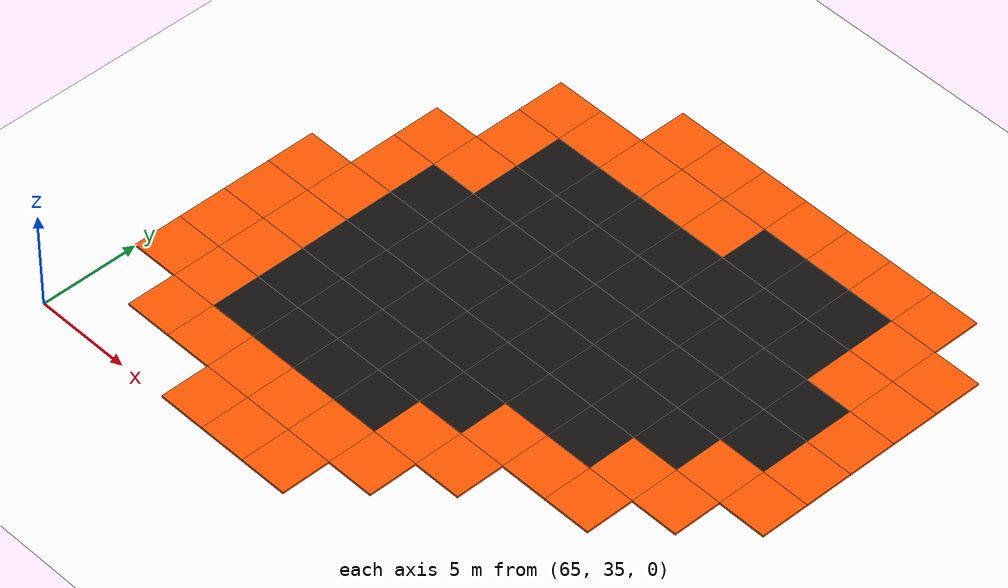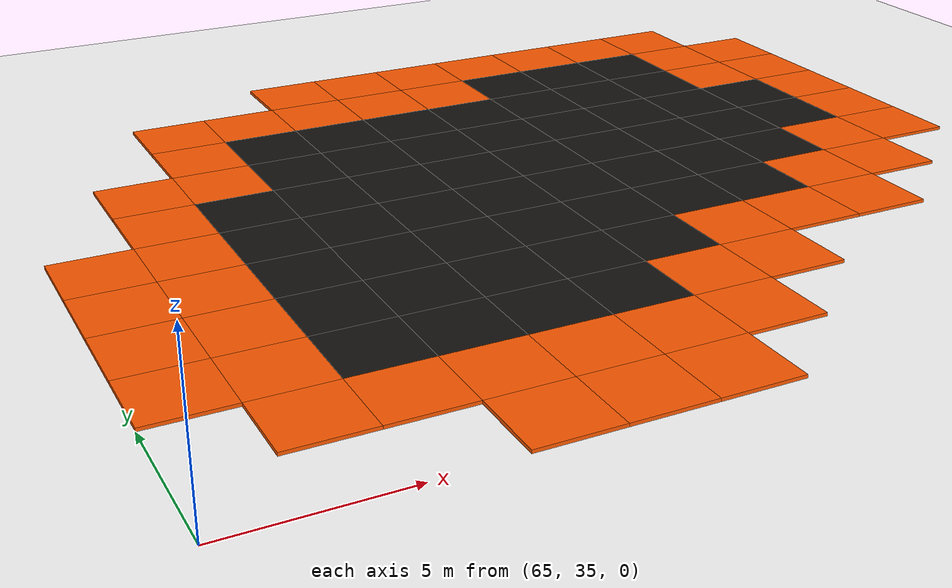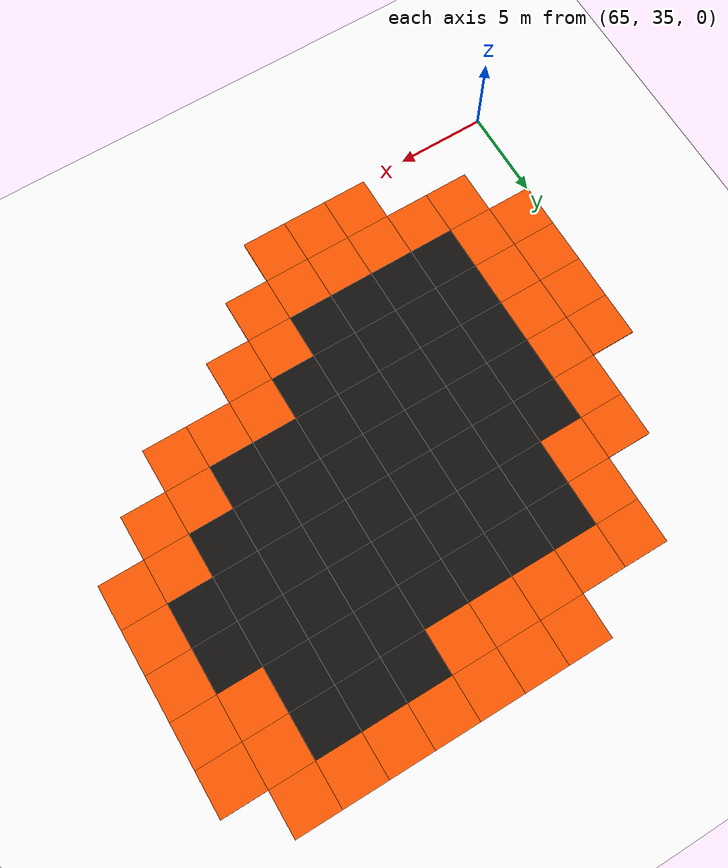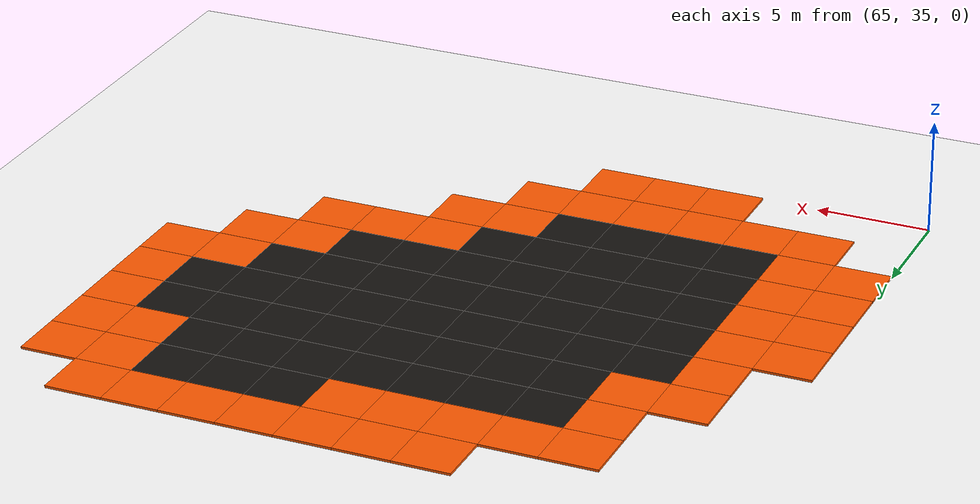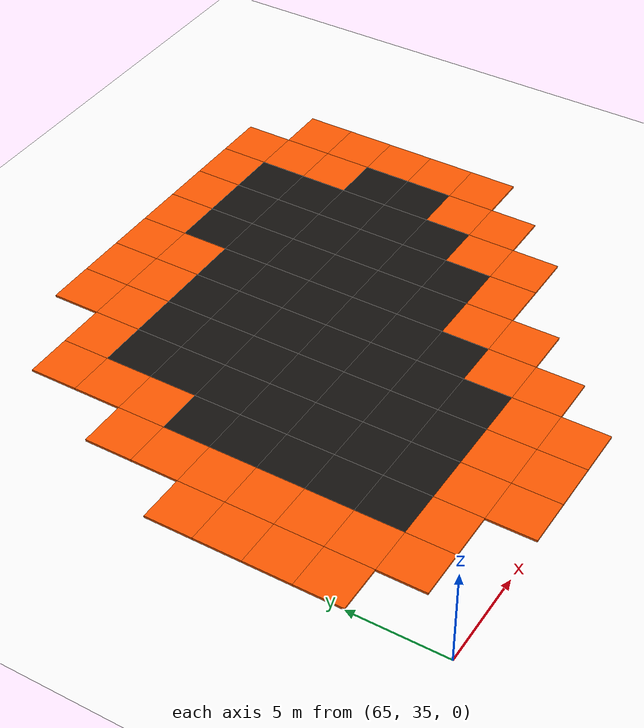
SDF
<?xml version="1.0" encoding="UTF-8"?>
<sdf version="1.9">
  <world name="fire">
    <physics type="ode">
      <max_step_size>0.004</max_step_size>
      <real_time_factor>1.0</real_time_factor>
      <real_time_update_rate>250</real_time_update_rate>
    </physics>
    <gravity>0 0 -9.8</gravity>
    <magnetic_field>6e-06 2.3e-05 -4.2e-05</magnetic_field>
    <atmosphere type="adiabatic"/>
    <scene>
      <grid>false</grid>
      <ambient>0.4 0.4 0.4 1</ambient>
      <background>0.7 0.7 0.7 1</background>
      <shadows>true</shadows>
    </scene>
    <model name="ground_plane">
      <static>true</static>
      <link name="link">
        <collision name="collision">
          <geometry>
            <plane>
              <normal>0 0 1</normal>
              <size>1 1</size>
            </plane>
          </geometry>
          <surface>
            <friction>
              <ode/>
            </friction>
            <bounce/>
            <contact/>
          </surface>
        </collision>
        <visual name="visual">
          <geometry>
            <plane>
              <normal>0 0 1</normal>
              <size>400 400</size>
            </plane>
          </geometry>
          <material>
            <ambient>1 1 1 1</ambient>
            <diffuse>1 1 1 1</diffuse>
            <specular>0 0 0 1</specular>
            <pbr>
              <metal>
                <albedo_map>model://grass_ground/materials/textures/grass.png</albedo_map>
                <metalness>0</metalness>
                <roughness>1</roughness>
              </metal>
            </pbr>
          </material>
        </visual>
        <pose>0 0 0 0 -0 0</pose>
        <inertial>
          <pose>0 0 0 0 -0 0</pose>
          <mass>1</mass>
          <inertia>
            <ixx>1</ixx>
            <ixy>0</ixy>
            <ixz>0</ixz>
            <iyy>1</iyy>
            <iyz>0</iyz>
            <izz>1</izz>
          </inertia>
        </inertial>
        <enable_wind>false</enable_wind>
      </link>
      <pose>0 0 0 0 -0 0</pose>
      <self_collide>false</self_collide>
    </model>
    <light name="sunUTC" type="directional">
      <pose>0 0 500 0 -0 0</pose>
      <cast_shadows>true</cast_shadows>
      <intensity>1</intensity>
      <direction>0.001 0.625 -0.78</direction>
      <diffuse>0.904 0.904 0.904 1</diffuse>
      <specular>0.271 0.271 0.271 1</specular>
      <attenuation>
        <range>2000</range>
        <linear>0</linear>
        <constant>1</constant>
        <quadratic>0</quadratic>
      </attenuation>
      <spot>
        <inner_angle>0</inner_angle>
        <outer_angle>0</outer_angle>
        <falloff>0</falloff>
      </spot>
    </light>

    <atmosphere type="adiabatic">
      <temperature>298.15</temperature>
    </atmosphere>
    <model name="fire_cell_000">
      <static>true</static>
      <pose>66.25 41.25 0.05 0 0 0</pose>
      <link name="link">
        <visual name="visual">
          <geometry><box><size>2.5 2.5 0.1</size></box></geometry>
          <material><ambient>1.0 0.35 0.0 1</ambient><diffuse>1.0 0.35 0.0 1</diffuse><emissive>0.9 0.25 0.0 1</emissive></material>
          <plugin filename="gz-sim-thermal-system" name="gz::sim::systems::Thermal">
            <temperature>663.6</temperature>
          </plugin>
        </visual>
      </link>
    </model>
    <model name="fire_cell_001">
      <static>true</static>
      <pose>66.25 43.75 0.05 0 0 0</pose>
      <link name="link">
        <visual name="visual">
          <geometry><box><size>2.5 2.5 0.1</size></box></geometry>
          <material><ambient>1.0 0.35 0.0 1</ambient><diffuse>1.0 0.35 0.0 1</diffuse><emissive>0.9 0.25 0.0 1</emissive></material>
          <plugin filename="gz-sim-thermal-system" name="gz::sim::systems::Thermal">
            <temperature>726.2</temperature>
          </plugin>
        </visual>
      </link>
    </model>
    <model name="fire_cell_002">
      <static>true</static>
      <pose>66.25 46.25 0.05 0 0 0</pose>
      <link name="link">
        <visual name="visual">
          <geometry><box><size>2.5 2.5 0.1</size></box></geometry>
          <material><ambient>1.0 0.35 0.0 1</ambient><diffuse>1.0 0.35 0.0 1</diffuse><emissive>0.9 0.25 0.0 1</emissive></material>
          <plugin filename="gz-sim-thermal-system" name="gz::sim::systems::Thermal">
            <temperature>725.2</temperature>
          </plugin>
        </visual>
      </link>
    </model>
    <model name="fire_cell_003">
      <static>true</static>
      <pose>66.25 48.75 0.05 0 0 0</pose>
      <link name="link">
        <visual name="visual">
          <geometry><box><size>2.5 2.5 0.1</size></box></geometry>
          <material><ambient>1.0 0.35 0.0 1</ambient><diffuse>1.0 0.35 0.0 1</diffuse><emissive>0.9 0.25 0.0 1</emissive></material>
          <plugin filename="gz-sim-thermal-system" name="gz::sim::systems::Thermal">
            <temperature>658.7</temperature>
          </plugin>
        </visual>
      </link>
    </model>
    <model name="fire_cell_004">
      <static>true</static>
      <pose>68.75 38.75 0.05 0 0 0</pose>
      <link name="link">
        <visual name="visual">
          <geometry><box><size>2.5 2.5 0.1</size></box></geometry>
          <material><ambient>1.0 0.35 0.0 1</ambient><diffuse>1.0 0.35 0.0 1</diffuse><emissive>0.9 0.25 0.0 1</emissive></material>
          <plugin filename="gz-sim-thermal-system" name="gz::sim::systems::Thermal">
            <temperature>687.7</temperature>
          </plugin>
        </visual>
      </link>
    </model>
    <model name="fire_cell_005">
      <static>true</static>
      <pose>68.75 41.25 0.05 0 0 0</pose>
      <link name="link">
        <visual name="visual">
          <geometry><box><size>2.5 2.5 0.1</size></box></geometry>
          <material><ambient>1.0 0.35 0.0 1</ambient><diffuse>1.0 0.35 0.0 1</diffuse><emissive>0.9 0.25 0.0 1</emissive></material>
          <plugin filename="gz-sim-thermal-system" name="gz::sim::systems::Thermal">
            <temperature>709.3</temperature>
          </plugin>
        </visual>
      </link>
    </model>
    <model name="fire_cell_006">
      <static>true</static>
      <pose>68.75 43.75 0.05 0 0 0</pose>
      <link name="link">
        <visual name="visual">
          <geometry><box><size>2.5 2.5 0.1</size></box></geometry>
          <material><ambient>1.0 0.35 0.0 1</ambient><diffuse>1.0 0.35 0.0 1</diffuse><emissive>0.9 0.25 0.0 1</emissive></material>
          <plugin filename="gz-sim-thermal-system" name="gz::sim::systems::Thermal">
            <temperature>715.3</temperature>
          </plugin>
        </visual>
      </link>
    </model>
    <model name="fire_cell_007">
      <static>true</static>
      <pose>68.75 46.25 0.05 0 0 0</pose>
      <link name="link">
        <visual name="visual">
          <geometry><box><size>2.5 2.5 0.1</size></box></geometry>
          <material><ambient>1.0 0.35 0.0 1</ambient><diffuse>1.0 0.35 0.0 1</diffuse><emissive>0.9 0.25 0.0 1</emissive></material>
          <plugin filename="gz-sim-thermal-system" name="gz::sim::systems::Thermal">
            <temperature>744.8</temperature>
          </plugin>
        </visual>
      </link>
    </model>
    <model name="fire_cell_008">
      <static>true</static>
      <pose>68.75 48.75 0.05 0 0 0</pose>
      <link name="link">
        <visual name="visual">
          <geometry><box><size>2.5 2.5 0.1</size></box></geometry>
          <material><ambient>1.0 0.35 0.0 1</ambient><diffuse>1.0 0.35 0.0 1</diffuse><emissive>0.9 0.25 0.0 1</emissive></material>
          <plugin filename="gz-sim-thermal-system" name="gz::sim::systems::Thermal">
            <temperature>698.6</temperature>
          </plugin>
        </visual>
      </link>
    </model>
    <model name="fire_cell_009">
      <static>true</static>
      <pose>68.75 51.25 0.05 0 0 0</pose>
      <link name="link">
        <visual name="visual">
          <geometry><box><size>2.5 2.5 0.1</size></box></geometry>
          <material><ambient>1.0 0.35 0.0 1</ambient><diffuse>1.0 0.35 0.0 1</diffuse><emissive>0.9 0.25 0.0 1</emissive></material>
          <plugin filename="gz-sim-thermal-system" name="gz::sim::systems::Thermal">
            <temperature>712.0</temperature>
          </plugin>
        </visual>
      </link>
    </model>
    <model name="fire_cell_010">
      <static>true</static>
      <pose>68.75 53.75 0.05 0 0 0</pose>
      <link name="link">
        <visual name="visual">
          <geometry><box><size>2.5 2.5 0.1</size></box></geometry>
          <material><ambient>1.0 0.35 0.0 1</ambient><diffuse>1.0 0.35 0.0 1</diffuse><emissive>0.9 0.25 0.0 1</emissive></material>
          <plugin filename="gz-sim-thermal-system" name="gz::sim::systems::Thermal">
            <temperature>723.2</temperature>
          </plugin>
        </visual>
      </link>
    </model>
    <model name="fire_cell_011">
      <static>true</static>
      <pose>71.25 38.75 0.05 0 0 0</pose>
      <link name="link">
        <visual name="visual">
          <geometry><box><size>2.5 2.5 0.1</size></box></geometry>
          <material><ambient>1.0 0.35 0.0 1</ambient><diffuse>1.0 0.35 0.0 1</diffuse><emissive>0.9 0.25 0.0 1</emissive></material>
          <plugin filename="gz-sim-thermal-system" name="gz::sim::systems::Thermal">
            <temperature>710.6</temperature>
          </plugin>
        </visual>
      </link>
    </model>
    <model name="fire_cell_012">
      <static>true</static>
      <pose>71.25 41.25 0.05 0 0 0</pose>
      <link name="link">
        <visual name="visual">
          <geometry><box><size>2.5 2.5 0.1</size></box></geometry>
          <material><ambient>0.08 0.07 0.06 1</ambient><diffuse>0.08 0.07 0.06 1</diffuse><emissive>0 0 0 1</emissive></material>
          <plugin filename="gz-sim-thermal-system" name="gz::sim::systems::Thermal">
            <temperature>361.9</temperature>
          </plugin>
        </visual>
      </link>
    </model>
    <model name="fire_cell_013">
      <static>true</static>
      <pose>71.25 43.75 0.05 0 0 0</pose>
      <link name="link">
        <visual name="visual">
          <geometry><box><size>2.5 2.5 0.1</size></box></geometry>
          <material><ambient>0.08 0.07 0.06 1</ambient><diffuse>0.08 0.07 0.06 1</diffuse><emissive>0 0 0 1</emissive></material>
          <plugin filename="gz-sim-thermal-system" name="gz::sim::systems::Thermal">
            <temperature>397.6</temperature>
          </plugin>
        </visual>
      </link>
    </model>
    <model name="fire_cell_014">
      <static>true</static>
      <pose>71.25 46.25 0.05 0 0 0</pose>
      <link name="link">
        <visual name="visual">
          <geometry><box><size>2.5 2.5 0.1</size></box></geometry>
          <material><ambient>0.08 0.07 0.06 1</ambient><diffuse>0.08 0.07 0.06 1</diffuse><emissive>0 0 0 1</emissive></material>
          <plugin filename="gz-sim-thermal-system" name="gz::sim::systems::Thermal">
            <temperature>382.7</temperature>
          </plugin>
        </visual>
      </link>
    </model>
    <model name="fire_cell_015">
      <static>true</static>
      <pose>71.25 48.75 0.05 0 0 0</pose>
      <link name="link">
        <visual name="visual">
          <geometry><box><size>2.5 2.5 0.1</size></box></geometry>
          <material><ambient>0.08 0.07 0.06 1</ambient><diffuse>0.08 0.07 0.06 1</diffuse><emissive>0 0 0 1</emissive></material>
          <plugin filename="gz-sim-thermal-system" name="gz::sim::systems::Thermal">
            <temperature>386.2</temperature>
          </plugin>
        </visual>
      </link>
    </model>
    <model name="fire_cell_016">
      <static>true</static>
      <pose>71.25 51.25 0.05 0 0 0</pose>
      <link name="link">
        <visual name="visual">
          <geometry><box><size>2.5 2.5 0.1</size></box></geometry>
          <material><ambient>0.08 0.07 0.06 1</ambient><diffuse>0.08 0.07 0.06 1</diffuse><emissive>0 0 0 1</emissive></material>
          <plugin filename="gz-sim-thermal-system" name="gz::sim::systems::Thermal">
            <temperature>341.1</temperature>
          </plugin>
        </visual>
      </link>
    </model>
    <model name="fire_cell_017">
      <static>true</static>
      <pose>71.25 53.75 0.05 0 0 0</pose>
      <link name="link">
        <visual name="visual">
          <geometry><box><size>2.5 2.5 0.1</size></box></geometry>
          <material><ambient>1.0 0.35 0.0 1</ambient><diffuse>1.0 0.35 0.0 1</diffuse><emissive>0.9 0.25 0.0 1</emissive></material>
          <plugin filename="gz-sim-thermal-system" name="gz::sim::systems::Thermal">
            <temperature>742.6</temperature>
          </plugin>
        </visual>
      </link>
    </model>
    <model name="fire_cell_018">
      <static>true</static>
      <pose>71.25 56.25 0.05 0 0 0</pose>
      <link name="link">
        <visual name="visual">
          <geometry><box><size>2.5 2.5 0.1</size></box></geometry>
          <material><ambient>1.0 0.35 0.0 1</ambient><diffuse>1.0 0.35 0.0 1</diffuse><emissive>0.9 0.25 0.0 1</emissive></material>
          <plugin filename="gz-sim-thermal-system" name="gz::sim::systems::Thermal">
            <temperature>663.8</temperature>
          </plugin>
        </visual>
      </link>
    </model>
    <model name="fire_cell_019">
      <static>true</static>
      <pose>71.25 58.75 0.05 0 0 0</pose>
      <link name="link">
        <visual name="visual">
          <geometry><box><size>2.5 2.5 0.1</size></box></geometry>
          <material><ambient>1.0 0.35 0.0 1</ambient><diffuse>1.0 0.35 0.0 1</diffuse><emissive>0.9 0.25 0.0 1</emissive></material>
          <plugin filename="gz-sim-thermal-system" name="gz::sim::systems::Thermal">
            <temperature>708.3</temperature>
          </plugin>
        </visual>
      </link>
    </model>
    <model name="fire_cell_020">
      <static>true</static>
      <pose>73.75 36.25 0.05 0 0 0</pose>
      <link name="link">
        <visual name="visual">
          <geometry><box><size>2.5 2.5 0.1</size></box></geometry>
          <material><ambient>1.0 0.35 0.0 1</ambient><diffuse>1.0 0.35 0.0 1</diffuse><emissive>0.9 0.25 0.0 1</emissive></material>
          <plugin filename="gz-sim-thermal-system" name="gz::sim::systems::Thermal">
            <temperature>652.5</temperature>
          </plugin>
        </visual>
      </link>
    </model>
    <model name="fire_cell_021">
      <static>true</static>
      <pose>73.75 38.75 0.05 0 0 0</pose>
      <link name="link">
        <visual name="visual">
          <geometry><box><size>2.5 2.5 0.1</size></box></geometry>
          <material><ambient>1.0 0.35 0.0 1</ambient><diffuse>1.0 0.35 0.0 1</diffuse><emissive>0.9 0.25 0.0 1</emissive></material>
          <plugin filename="gz-sim-thermal-system" name="gz::sim::systems::Thermal">
            <temperature>716.6</temperature>
          </plugin>
        </visual>
      </link>
    </model>
    <model name="fire_cell_022">
      <static>true</static>
      <pose>73.75 41.25 0.05 0 0 0</pose>
      <link name="link">
        <visual name="visual">
          <geometry><box><size>2.5 2.5 0.1</size></box></geometry>
          <material><ambient>0.08 0.07 0.06 1</ambient><diffuse>0.08 0.07 0.06 1</diffuse><emissive>0 0 0 1</emissive></material>
          <plugin filename="gz-sim-thermal-system" name="gz::sim::systems::Thermal">
            <temperature>391.8</temperature>
          </plugin>
        </visual>
      </link>
    </model>
    <model name="fire_cell_023">
      <static>true</static>
      <pose>73.75 43.75 0.05 0 0 0</pose>
      <link name="link">
        <visual name="visual">
          <geometry><box><size>2.5 2.5 0.1</size></box></geometry>
          <material><ambient>0.08 0.07 0.06 1</ambient><diffuse>0.08 0.07 0.06 1</diffuse><emissive>0 0 0 1</emissive></material>
          <plugin filename="gz-sim-thermal-system" name="gz::sim::systems::Thermal">
            <temperature>333.9</temperature>
          </plugin>
        </visual>
      </link>
    </model>
    <model name="fire_cell_024">
      <static>true</static>
      <pose>73.75 46.25 0.05 0 0 0</pose>
      <link name="link">
        <visual name="visual">
          <geometry><box><size>2.5 2.5 0.1</size></box></geometry>
          <material><ambient>0.08 0.07 0.06 1</ambient><diffuse>0.08 0.07 0.06 1</diffuse><emissive>0 0 0 1</emissive></material>
          <plugin filename="gz-sim-thermal-system" name="gz::sim::systems::Thermal">
            <temperature>346.5</temperature>
          </plugin>
        </visual>
      </link>
    </model>
    <model name="fire_cell_025">
      <static>true</static>
      <pose>73.75 48.75 0.05 0 0 0</pose>
      <link name="link">
        <visual name="visual">
          <geometry><box><size>2.5 2.5 0.1</size></box></geometry>
          <material><ambient>0.08 0.07 0.06 1</ambient><diffuse>0.08 0.07 0.06 1</diffuse><emissive>0 0 0 1</emissive></material>
          <plugin filename="gz-sim-thermal-system" name="gz::sim::systems::Thermal">
            <temperature>369.5</temperature>
          </plugin>
        </visual>
      </link>
    </model>
    <model name="fire_cell_026">
      <static>true</static>
      <pose>73.75 51.25 0.05 0 0 0</pose>
      <link name="link">
        <visual name="visual">
          <geometry><box><size>2.5 2.5 0.1</size></box></geometry>
          <material><ambient>0.08 0.07 0.06 1</ambient><diffuse>0.08 0.07 0.06 1</diffuse><emissive>0 0 0 1</emissive></material>
          <plugin filename="gz-sim-thermal-system" name="gz::sim::systems::Thermal">
            <temperature>342.9</temperature>
          </plugin>
        </visual>
      </link>
    </model>
    <model name="fire_cell_027">
      <static>true</static>
      <pose>73.75 53.75 0.05 0 0 0</pose>
      <link name="link">
        <visual name="visual">
          <geometry><box><size>2.5 2.5 0.1</size></box></geometry>
          <material><ambient>0.08 0.07 0.06 1</ambient><diffuse>0.08 0.07 0.06 1</diffuse><emissive>0 0 0 1</emissive></material>
          <plugin filename="gz-sim-thermal-system" name="gz::sim::systems::Thermal">
            <temperature>383.7</temperature>
          </plugin>
        </visual>
      </link>
    </model>
    <model name="fire_cell_028">
      <static>true</static>
      <pose>73.75 56.25 0.05 0 0 0</pose>
      <link name="link">
        <visual name="visual">
          <geometry><box><size>2.5 2.5 0.1</size></box></geometry>
          <material><ambient>0.08 0.07 0.06 1</ambient><diffuse>0.08 0.07 0.06 1</diffuse><emissive>0 0 0 1</emissive></material>
          <plugin filename="gz-sim-thermal-system" name="gz::sim::systems::Thermal">
            <temperature>354.2</temperature>
          </plugin>
        </visual>
      </link>
    </model>
    <model name="fire_cell_029">
      <static>true</static>
      <pose>73.75 58.75 0.05 0 0 0</pose>
      <link name="link">
        <visual name="visual">
          <geometry><box><size>2.5 2.5 0.1</size></box></geometry>
          <material><ambient>1.0 0.35 0.0 1</ambient><diffuse>1.0 0.35 0.0 1</diffuse><emissive>0.9 0.25 0.0 1</emissive></material>
          <plugin filename="gz-sim-thermal-system" name="gz::sim::systems::Thermal">
            <temperature>705.6</temperature>
          </plugin>
        </visual>
      </link>
    </model>
    <model name="fire_cell_030">
      <static>true</static>
      <pose>76.25 36.25 0.05 0 0 0</pose>
      <link name="link">
        <visual name="visual">
          <geometry><box><size>2.5 2.5 0.1</size></box></geometry>
          <material><ambient>1.0 0.35 0.0 1</ambient><diffuse>1.0 0.35 0.0 1</diffuse><emissive>0.9 0.25 0.0 1</emissive></material>
          <plugin filename="gz-sim-thermal-system" name="gz::sim::systems::Thermal">
            <temperature>715.8</temperature>
          </plugin>
        </visual>
      </link>
    </model>
    <model name="fire_cell_031">
      <static>true</static>
      <pose>76.25 38.75 0.05 0 0 0</pose>
      <link name="link">
        <visual name="visual">
          <geometry><box><size>2.5 2.5 0.1</size></box></geometry>
          <material><ambient>1.0 0.35 0.0 1</ambient><diffuse>1.0 0.35 0.0 1</diffuse><emissive>0.9 0.25 0.0 1</emissive></material>
          <plugin filename="gz-sim-thermal-system" name="gz::sim::systems::Thermal">
            <temperature>697.9</temperature>
          </plugin>
        </visual>
      </link>
    </model>
    <model name="fire_cell_032">
      <static>true</static>
      <pose>76.25 41.25 0.05 0 0 0</pose>
      <link name="link">
        <visual name="visual">
          <geometry><box><size>2.5 2.5 0.1</size></box></geometry>
          <material><ambient>0.08 0.07 0.06 1</ambient><diffuse>0.08 0.07 0.06 1</diffuse><emissive>0 0 0 1</emissive></material>
          <plugin filename="gz-sim-thermal-system" name="gz::sim::systems::Thermal">
            <temperature>369.0</temperature>
          </plugin>
        </visual>
      </link>
    </model>
    <model name="fire_cell_033">
      <static>true</static>
      <pose>76.25 43.75 0.05 0 0 0</pose>
      <link name="link">
        <visual name="visual">
          <geometry><box><size>2.5 2.5 0.1</size></box></geometry>
          <material><ambient>0.08 0.07 0.06 1</ambient><diffuse>0.08 0.07 0.06 1</diffuse><emissive>0 0 0 1</emissive></material>
          <plugin filename="gz-sim-thermal-system" name="gz::sim::systems::Thermal">
            <temperature>367.9</temperature>
          </plugin>
        </visual>
      </link>
    </model>
    <model name="fire_cell_034">
      <static>true</static>
      <pose>76.25 46.25 0.05 0 0 0</pose>
      <link name="link">
        <visual name="visual">
          <geometry><box><size>2.5 2.5 0.1</size></box></geometry>
          <material><ambient>0.08 0.07 0.06 1</ambient><diffuse>0.08 0.07 0.06 1</diffuse><emissive>0 0 0 1</emissive></material>
          <plugin filename="gz-sim-thermal-system" name="gz::sim::systems::Thermal">
            <temperature>378.0</temperature>
          </plugin>
        </visual>
      </link>
    </model>
    <model name="fire_cell_035">
      <static>true</static>
      <pose>76.25 48.75 0.05 0 0 0</pose>
      <link name="link">
        <visual name="visual">
          <geometry><box><size>2.5 2.5 0.1</size></box></geometry>
          <material><ambient>0.08 0.07 0.06 1</ambient><diffuse>0.08 0.07 0.06 1</diffuse><emissive>0 0 0 1</emissive></material>
          <plugin filename="gz-sim-thermal-system" name="gz::sim::systems::Thermal">
            <temperature>376.2</temperature>
          </plugin>
        </visual>
      </link>
    </model>
    <model name="fire_cell_036">
      <static>true</static>
      <pose>76.25 51.25 0.05 0 0 0</pose>
      <link name="link">
        <visual name="visual">
          <geometry><box><size>2.5 2.5 0.1</size></box></geometry>
          <material><ambient>0.08 0.07 0.06 1</ambient><diffuse>0.08 0.07 0.06 1</diffuse><emissive>0 0 0 1</emissive></material>
          <plugin filename="gz-sim-thermal-system" name="gz::sim::systems::Thermal">
            <temperature>342.8</temperature>
          </plugin>
        </visual>
      </link>
    </model>
    <model name="fire_cell_037">
      <static>true</static>
      <pose>76.25 53.75 0.05 0 0 0</pose>
      <link name="link">
        <visual name="visual">
          <geometry><box><size>2.5 2.5 0.1</size></box></geometry>
          <material><ambient>0.08 0.07 0.06 1</ambient><diffuse>0.08 0.07 0.06 1</diffuse><emissive>0 0 0 1</emissive></material>
          <plugin filename="gz-sim-thermal-system" name="gz::sim::systems::Thermal">
            <temperature>383.4</temperature>
          </plugin>
        </visual>
      </link>
    </model>
    <model name="fire_cell_038">
      <static>true</static>
      <pose>76.25 56.25 0.05 0 0 0</pose>
      <link name="link">
        <visual name="visual">
          <geometry><box><size>2.5 2.5 0.1</size></box></geometry>
          <material><ambient>0.08 0.07 0.06 1</ambient><diffuse>0.08 0.07 0.06 1</diffuse><emissive>0 0 0 1</emissive></material>
          <plugin filename="gz-sim-thermal-system" name="gz::sim::systems::Thermal">
            <temperature>377.7</temperature>
          </plugin>
        </visual>
      </link>
    </model>
    <model name="fire_cell_039">
      <static>true</static>
      <pose>76.25 58.75 0.05 0 0 0</pose>
      <link name="link">
        <visual name="visual">
          <geometry><box><size>2.5 2.5 0.1</size></box></geometry>
          <material><ambient>1.0 0.35 0.0 1</ambient><diffuse>1.0 0.35 0.0 1</diffuse><emissive>0.9 0.25 0.0 1</emissive></material>
          <plugin filename="gz-sim-thermal-system" name="gz::sim::systems::Thermal">
            <temperature>686.1</temperature>
          </plugin>
        </visual>
      </link>
    </model>
    <model name="fire_cell_040">
      <static>true</static>
      <pose>76.25 61.25 0.05 0 0 0</pose>
      <link name="link">
        <visual name="visual">
          <geometry><box><size>2.5 2.5 0.1</size></box></geometry>
          <material><ambient>1.0 0.35 0.0 1</ambient><diffuse>1.0 0.35 0.0 1</diffuse><emissive>0.9 0.25 0.0 1</emissive></material>
          <plugin filename="gz-sim-thermal-system" name="gz::sim::systems::Thermal">
            <temperature>707.2</temperature>
          </plugin>
        </visual>
      </link>
    </model>
    <model name="fire_cell_041">
      <static>true</static>
      <pose>78.75 36.25 0.05 0 0 0</pose>
      <link name="link">
        <visual name="visual">
          <geometry><box><size>2.5 2.5 0.1</size></box></geometry>
          <material><ambient>1.0 0.35 0.0 1</ambient><diffuse>1.0 0.35 0.0 1</diffuse><emissive>0.9 0.25 0.0 1</emissive></material>
          <plugin filename="gz-sim-thermal-system" name="gz::sim::systems::Thermal">
            <temperature>719.2</temperature>
          </plugin>
        </visual>
      </link>
    </model>
    <model name="fire_cell_042">
      <static>true</static>
      <pose>78.75 38.75 0.05 0 0 0</pose>
      <link name="link">
        <visual name="visual">
          <geometry><box><size>2.5 2.5 0.1</size></box></geometry>
          <material><ambient>1.0 0.35 0.0 1</ambient><diffuse>1.0 0.35 0.0 1</diffuse><emissive>0.9 0.25 0.0 1</emissive></material>
          <plugin filename="gz-sim-thermal-system" name="gz::sim::systems::Thermal">
            <temperature>672.4</temperature>
          </plugin>
        </visual>
      </link>
    </model>
    <model name="fire_cell_043">
      <static>true</static>
      <pose>78.75 41.25 0.05 0 0 0</pose>
      <link name="link">
        <visual name="visual">
          <geometry><box><size>2.5 2.5 0.1</size></box></geometry>
          <material><ambient>0.08 0.07 0.06 1</ambient><diffuse>0.08 0.07 0.06 1</diffuse><emissive>0 0 0 1</emissive></material>
          <plugin filename="gz-sim-thermal-system" name="gz::sim::systems::Thermal">
            <temperature>390.4</temperature>
          </plugin>
        </visual>
      </link>
    </model>
    <model name="fire_cell_044">
      <static>true</static>
      <pose>78.75 43.75 0.05 0 0 0</pose>
      <link name="link">
        <visual name="visual">
          <geometry><box><size>2.5 2.5 0.1</size></box></geometry>
          <material><ambient>0.08 0.07 0.06 1</ambient><diffuse>0.08 0.07 0.06 1</diffuse><emissive>0 0 0 1</emissive></material>
          <plugin filename="gz-sim-thermal-system" name="gz::sim::systems::Thermal">
            <temperature>385.8</temperature>
          </plugin>
        </visual>
      </link>
    </model>
    <model name="fire_cell_045">
      <static>true</static>
      <pose>78.75 46.25 0.05 0 0 0</pose>
      <link name="link">
        <visual name="visual">
          <geometry><box><size>2.5 2.5 0.1</size></box></geometry>
          <material><ambient>0.08 0.07 0.06 1</ambient><diffuse>0.08 0.07 0.06 1</diffuse><emissive>0 0 0 1</emissive></material>
          <plugin filename="gz-sim-thermal-system" name="gz::sim::systems::Thermal">
            <temperature>378.5</temperature>
          </plugin>
        </visual>
      </link>
    </model>
    <model name="fire_cell_046">
      <static>true</static>
      <pose>78.75 48.75 0.05 0 0 0</pose>
      <link name="link">
        <visual name="visual">
          <geometry><box><size>2.5 2.5 0.1</size></box></geometry>
          <material><ambient>0.08 0.07 0.06 1</ambient><diffuse>0.08 0.07 0.06 1</diffuse><emissive>0 0 0 1</emissive></material>
          <plugin filename="gz-sim-thermal-system" name="gz::sim::systems::Thermal">
            <temperature>393.5</temperature>
          </plugin>
        </visual>
      </link>
    </model>
    <model name="fire_cell_047">
      <static>true</static>
      <pose>78.75 51.25 0.05 0 0 0</pose>
      <link name="link">
        <visual name="visual">
          <geometry><box><size>2.5 2.5 0.1</size></box></geometry>
          <material><ambient>0.08 0.07 0.06 1</ambient><diffuse>0.08 0.07 0.06 1</diffuse><emissive>0 0 0 1</emissive></material>
          <plugin filename="gz-sim-thermal-system" name="gz::sim::systems::Thermal">
            <temperature>353.0</temperature>
          </plugin>
        </visual>
      </link>
    </model>
    <model name="fire_cell_048">
      <static>true</static>
      <pose>78.75 53.75 0.05 0 0 0</pose>
      <link name="link">
        <visual name="visual">
          <geometry><box><size>2.5 2.5 0.1</size></box></geometry>
          <material><ambient>0.08 0.07 0.06 1</ambient><diffuse>0.08 0.07 0.06 1</diffuse><emissive>0 0 0 1</emissive></material>
          <plugin filename="gz-sim-thermal-system" name="gz::sim::systems::Thermal">
            <temperature>347.2</temperature>
          </plugin>
        </visual>
      </link>
    </model>
    <model name="fire_cell_049">
      <static>true</static>
      <pose>78.75 56.25 0.05 0 0 0</pose>
      <link name="link">
        <visual name="visual">
          <geometry><box><size>2.5 2.5 0.1</size></box></geometry>
          <material><ambient>0.08 0.07 0.06 1</ambient><diffuse>0.08 0.07 0.06 1</diffuse><emissive>0 0 0 1</emissive></material>
          <plugin filename="gz-sim-thermal-system" name="gz::sim::systems::Thermal">
            <temperature>364.8</temperature>
          </plugin>
        </visual>
      </link>
    </model>
    <model name="fire_cell_050">
      <static>true</static>
      <pose>78.75 58.75 0.05 0 0 0</pose>
      <link name="link">
        <visual name="visual">
          <geometry><box><size>2.5 2.5 0.1</size></box></geometry>
          <material><ambient>1.0 0.35 0.0 1</ambient><diffuse>1.0 0.35 0.0 1</diffuse><emissive>0.9 0.25 0.0 1</emissive></material>
          <plugin filename="gz-sim-thermal-system" name="gz::sim::systems::Thermal">
            <temperature>704.2</temperature>
          </plugin>
        </visual>
      </link>
    </model>
    <model name="fire_cell_051">
      <static>true</static>
      <pose>78.75 61.25 0.05 0 0 0</pose>
      <link name="link">
        <visual name="visual">
          <geometry><box><size>2.5 2.5 0.1</size></box></geometry>
          <material><ambient>1.0 0.35 0.0 1</ambient><diffuse>1.0 0.35 0.0 1</diffuse><emissive>0.9 0.25 0.0 1</emissive></material>
          <plugin filename="gz-sim-thermal-system" name="gz::sim::systems::Thermal">
            <temperature>691.5</temperature>
          </plugin>
        </visual>
      </link>
    </model>
    <model name="fire_cell_052">
      <static>true</static>
      <pose>81.25 38.75 0.05 0 0 0</pose>
      <link name="link">
        <visual name="visual">
          <geometry><box><size>2.5 2.5 0.1</size></box></geometry>
          <material><ambient>1.0 0.35 0.0 1</ambient><diffuse>1.0 0.35 0.0 1</diffuse><emissive>0.9 0.25 0.0 1</emissive></material>
          <plugin filename="gz-sim-thermal-system" name="gz::sim::systems::Thermal">
            <temperature>682.2</temperature>
          </plugin>
        </visual>
      </link>
    </model>
    <model name="fire_cell_053">
      <static>true</static>
      <pose>81.25 41.25 0.05 0 0 0</pose>
      <link name="link">
        <visual name="visual">
          <geometry><box><size>2.5 2.5 0.1</size></box></geometry>
          <material><ambient>1.0 0.35 0.0 1</ambient><diffuse>1.0 0.35 0.0 1</diffuse><emissive>0.9 0.25 0.0 1</emissive></material>
          <plugin filename="gz-sim-thermal-system" name="gz::sim::systems::Thermal">
            <temperature>726.8</temperature>
          </plugin>
        </visual>
      </link>
    </model>
    <model name="fire_cell_054">
      <static>true</static>
      <pose>81.25 43.75 0.05 0 0 0</pose>
      <link name="link">
        <visual name="visual">
          <geometry><box><size>2.5 2.5 0.1</size></box></geometry>
          <material><ambient>0.08 0.07 0.06 1</ambient><diffuse>0.08 0.07 0.06 1</diffuse><emissive>0 0 0 1</emissive></material>
          <plugin filename="gz-sim-thermal-system" name="gz::sim::systems::Thermal">
            <temperature>342.0</temperature>
          </plugin>
        </visual>
      </link>
    </model>
    <model name="fire_cell_055">
      <static>true</static>
      <pose>81.25 46.25 0.05 0 0 0</pose>
      <link name="link">
        <visual name="visual">
          <geometry><box><size>2.5 2.5 0.1</size></box></geometry>
          <material><ambient>0.08 0.07 0.06 1</ambient><diffuse>0.08 0.07 0.06 1</diffuse><emissive>0 0 0 1</emissive></material>
          <plugin filename="gz-sim-thermal-system" name="gz::sim::systems::Thermal">
            <temperature>331.6</temperature>
          </plugin>
        </visual>
      </link>
    </model>
    <model name="fire_cell_056">
      <static>true</static>
      <pose>81.25 48.75 0.05 0 0 0</pose>
      <link name="link">
        <visual name="visual">
          <geometry><box><size>2.5 2.5 0.1</size></box></geometry>
          <material><ambient>0.08 0.07 0.06 1</ambient><diffuse>0.08 0.07 0.06 1</diffuse><emissive>0 0 0 1</emissive></material>
          <plugin filename="gz-sim-thermal-system" name="gz::sim::systems::Thermal">
            <temperature>385.2</temperature>
          </plugin>
        </visual>
      </link>
    </model>
    <model name="fire_cell_057">
      <static>true</static>
      <pose>81.25 51.25 0.05 0 0 0</pose>
      <link name="link">
        <visual name="visual">
          <geometry><box><size>2.5 2.5 0.1</size></box></geometry>
          <material><ambient>0.08 0.07 0.06 1</ambient><diffuse>0.08 0.07 0.06 1</diffuse><emissive>0 0 0 1</emissive></material>
          <plugin filename="gz-sim-thermal-system" name="gz::sim::systems::Thermal">
            <temperature>370.9</temperature>
          </plugin>
        </visual>
      </link>
    </model>
    <model name="fire_cell_058">
      <static>true</static>
      <pose>81.25 53.75 0.05 0 0 0</pose>
      <link name="link">
        <visual name="visual">
          <geometry><box><size>2.5 2.5 0.1</size></box></geometry>
          <material><ambient>0.08 0.07 0.06 1</ambient><diffuse>0.08 0.07 0.06 1</diffuse><emissive>0 0 0 1</emissive></material>
          <plugin filename="gz-sim-thermal-system" name="gz::sim::systems::Thermal">
            <temperature>375.6</temperature>
          </plugin>
        </visual>
      </link>
    </model>
    <model name="fire_cell_059">
      <static>true</static>
      <pose>81.25 56.25 0.05 0 0 0</pose>
      <link name="link">
        <visual name="visual">
          <geometry><box><size>2.5 2.5 0.1</size></box></geometry>
          <material><ambient>0.08 0.07 0.06 1</ambient><diffuse>0.08 0.07 0.06 1</diffuse><emissive>0 0 0 1</emissive></material>
          <plugin filename="gz-sim-thermal-system" name="gz::sim::systems::Thermal">
            <temperature>398.6</temperature>
          </plugin>
        </visual>
      </link>
    </model>
    <model name="fire_cell_060">
      <static>true</static>
      <pose>81.25 58.75 0.05 0 0 0</pose>
      <link name="link">
        <visual name="visual">
          <geometry><box><size>2.5 2.5 0.1</size></box></geometry>
          <material><ambient>1.0 0.35 0.0 1</ambient><diffuse>1.0 0.35 0.0 1</diffuse><emissive>0.9 0.25 0.0 1</emissive></material>
          <plugin filename="gz-sim-thermal-system" name="gz::sim::systems::Thermal">
            <temperature>706.1</temperature>
          </plugin>
        </visual>
      </link>
    </model>
    <model name="fire_cell_061">
      <static>true</static>
      <pose>81.25 61.25 0.05 0 0 0</pose>
      <link name="link">
        <visual name="visual">
          <geometry><box><size>2.5 2.5 0.1</size></box></geometry>
          <material><ambient>1.0 0.35 0.0 1</ambient><diffuse>1.0 0.35 0.0 1</diffuse><emissive>0.9 0.25 0.0 1</emissive></material>
          <plugin filename="gz-sim-thermal-system" name="gz::sim::systems::Thermal">
            <temperature>695.8</temperature>
          </plugin>
        </visual>
      </link>
    </model>
    <model name="fire_cell_062">
      <static>true</static>
      <pose>83.75 41.25 0.05 0 0 0</pose>
      <link name="link">
        <visual name="visual">
          <geometry><box><size>2.5 2.5 0.1</size></box></geometry>
          <material><ambient>1.0 0.35 0.0 1</ambient><diffuse>1.0 0.35 0.0 1</diffuse><emissive>0.9 0.25 0.0 1</emissive></material>
          <plugin filename="gz-sim-thermal-system" name="gz::sim::systems::Thermal">
            <temperature>704.5</temperature>
          </plugin>
        </visual>
      </link>
    </model>
    <model name="fire_cell_063">
      <static>true</static>
      <pose>83.75 43.75 0.05 0 0 0</pose>
      <link name="link">
        <visual name="visual">
          <geometry><box><size>2.5 2.5 0.1</size></box></geometry>
          <material><ambient>1.0 0.35 0.0 1</ambient><diffuse>1.0 0.35 0.0 1</diffuse><emissive>0.9 0.25 0.0 1</emissive></material>
          <plugin filename="gz-sim-thermal-system" name="gz::sim::systems::Thermal">
            <temperature>665.0</temperature>
          </plugin>
        </visual>
      </link>
    </model>
    <model name="fire_cell_064">
      <static>true</static>
      <pose>83.75 46.25 0.05 0 0 0</pose>
      <link name="link">
        <visual name="visual">
          <geometry><box><size>2.5 2.5 0.1</size></box></geometry>
          <material><ambient>0.08 0.07 0.06 1</ambient><diffuse>0.08 0.07 0.06 1</diffuse><emissive>0 0 0 1</emissive></material>
          <plugin filename="gz-sim-thermal-system" name="gz::sim::systems::Thermal">
            <temperature>389.4</temperature>
          </plugin>
        </visual>
      </link>
    </model>
    <model name="fire_cell_065">
      <static>true</static>
      <pose>83.75 48.75 0.05 0 0 0</pose>
      <link name="link">
        <visual name="visual">
          <geometry><box><size>2.5 2.5 0.1</size></box></geometry>
          <material><ambient>0.08 0.07 0.06 1</ambient><diffuse>0.08 0.07 0.06 1</diffuse><emissive>0 0 0 1</emissive></material>
          <plugin filename="gz-sim-thermal-system" name="gz::sim::systems::Thermal">
            <temperature>385.9</temperature>
          </plugin>
        </visual>
      </link>
    </model>
    <model name="fire_cell_066">
      <static>true</static>
      <pose>83.75 51.25 0.05 0 0 0</pose>
      <link name="link">
        <visual name="visual">
          <geometry><box><size>2.5 2.5 0.1</size></box></geometry>
          <material><ambient>0.08 0.07 0.06 1</ambient><diffuse>0.08 0.07 0.06 1</diffuse><emissive>0 0 0 1</emissive></material>
          <plugin filename="gz-sim-thermal-system" name="gz::sim::systems::Thermal">
            <temperature>380.3</temperature>
          </plugin>
        </visual>
      </link>
    </model>
    <model name="fire_cell_067">
      <static>true</static>
      <pose>83.75 53.75 0.05 0 0 0</pose>
      <link name="link">
        <visual name="visual">
          <geometry><box><size>2.5 2.5 0.1</size></box></geometry>
          <material><ambient>0.08 0.07 0.06 1</ambient><diffuse>0.08 0.07 0.06 1</diffuse><emissive>0 0 0 1</emissive></material>
          <plugin filename="gz-sim-thermal-system" name="gz::sim::systems::Thermal">
            <temperature>396.9</temperature>
          </plugin>
        </visual>
      </link>
    </model>
    <model name="fire_cell_068">
      <static>true</static>
      <pose>83.75 56.25 0.05 0 0 0</pose>
      <link name="link">
        <visual name="visual">
          <geometry><box><size>2.5 2.5 0.1</size></box></geometry>
          <material><ambient>0.08 0.07 0.06 1</ambient><diffuse>0.08 0.07 0.06 1</diffuse><emissive>0 0 0 1</emissive></material>
          <plugin filename="gz-sim-thermal-system" name="gz::sim::systems::Thermal">
            <temperature>348.5</temperature>
          </plugin>
        </visual>
      </link>
    </model>
    <model name="fire_cell_069">
      <static>true</static>
      <pose>83.75 58.75 0.05 0 0 0</pose>
      <link name="link">
        <visual name="visual">
          <geometry><box><size>2.5 2.5 0.1</size></box></geometry>
          <material><ambient>0.08 0.07 0.06 1</ambient><diffuse>0.08 0.07 0.06 1</diffuse><emissive>0 0 0 1</emissive></material>
          <plugin filename="gz-sim-thermal-system" name="gz::sim::systems::Thermal">
            <temperature>365.6</temperature>
          </plugin>
        </visual>
      </link>
    </model>
    <model name="fire_cell_070">
      <static>true</static>
      <pose>83.75 61.25 0.05 0 0 0</pose>
      <link name="link">
        <visual name="visual">
          <geometry><box><size>2.5 2.5 0.1</size></box></geometry>
          <material><ambient>1.0 0.35 0.0 1</ambient><diffuse>1.0 0.35 0.0 1</diffuse><emissive>0.9 0.25 0.0 1</emissive></material>
          <plugin filename="gz-sim-thermal-system" name="gz::sim::systems::Thermal">
            <temperature>700.4</temperature>
          </plugin>
        </visual>
      </link>
    </model>
    <model name="fire_cell_071">
      <static>true</static>
      <pose>86.25 43.75 0.05 0 0 0</pose>
      <link name="link">
        <visual name="visual">
          <geometry><box><size>2.5 2.5 0.1</size></box></geometry>
          <material><ambient>1.0 0.35 0.0 1</ambient><diffuse>1.0 0.35 0.0 1</diffuse><emissive>0.9 0.25 0.0 1</emissive></material>
          <plugin filename="gz-sim-thermal-system" name="gz::sim::systems::Thermal">
            <temperature>738.5</temperature>
          </plugin>
        </visual>
      </link>
    </model>
    <model name="fire_cell_072">
      <static>true</static>
      <pose>86.25 46.25 0.05 0 0 0</pose>
      <link name="link">
        <visual name="visual">
          <geometry><box><size>2.5 2.5 0.1</size></box></geometry>
          <material><ambient>0.08 0.07 0.06 1</ambient><diffuse>0.08 0.07 0.06 1</diffuse><emissive>0 0 0 1</emissive></material>
          <plugin filename="gz-sim-thermal-system" name="gz::sim::systems::Thermal">
            <temperature>386.7</temperature>
          </plugin>
        </visual>
      </link>
    </model>
    <model name="fire_cell_073">
      <static>true</static>
      <pose>86.25 48.75 0.05 0 0 0</pose>
      <link name="link">
        <visual name="visual">
          <geometry><box><size>2.5 2.5 0.1</size></box></geometry>
          <material><ambient>0.08 0.07 0.06 1</ambient><diffuse>0.08 0.07 0.06 1</diffuse><emissive>0 0 0 1</emissive></material>
          <plugin filename="gz-sim-thermal-system" name="gz::sim::systems::Thermal">
            <temperature>391.3</temperature>
          </plugin>
        </visual>
      </link>
    </model>
    <model name="fire_cell_074">
      <static>true</static>
      <pose>86.25 51.25 0.05 0 0 0</pose>
      <link name="link">
        <visual name="visual">
          <geometry><box><size>2.5 2.5 0.1</size></box></geometry>
          <material><ambient>0.08 0.07 0.06 1</ambient><diffuse>0.08 0.07 0.06 1</diffuse><emissive>0 0 0 1</emissive></material>
          <plugin filename="gz-sim-thermal-system" name="gz::sim::systems::Thermal">
            <temperature>353.1</temperature>
          </plugin>
        </visual>
      </link>
    </model>
    <model name="fire_cell_075">
      <static>true</static>
      <pose>86.25 53.75 0.05 0 0 0</pose>
      <link name="link">
        <visual name="visual">
          <geometry><box><size>2.5 2.5 0.1</size></box></geometry>
          <material><ambient>0.08 0.07 0.06 1</ambient><diffuse>0.08 0.07 0.06 1</diffuse><emissive>0 0 0 1</emissive></material>
          <plugin filename="gz-sim-thermal-system" name="gz::sim::systems::Thermal">
            <temperature>331.6</temperature>
          </plugin>
        </visual>
      </link>
    </model>
    <model name="fire_cell_076">
      <static>true</static>
      <pose>86.25 56.25 0.05 0 0 0</pose>
      <link name="link">
        <visual name="visual">
          <geometry><box><size>2.5 2.5 0.1</size></box></geometry>
          <material><ambient>0.08 0.07 0.06 1</ambient><diffuse>0.08 0.07 0.06 1</diffuse><emissive>0 0 0 1</emissive></material>
          <plugin filename="gz-sim-thermal-system" name="gz::sim::systems::Thermal">
            <temperature>383.1</temperature>
          </plugin>
        </visual>
      </link>
    </model>
    <model name="fire_cell_077">
      <static>true</static>
      <pose>86.25 58.75 0.05 0 0 0</pose>
      <link name="link">
        <visual name="visual">
          <geometry><box><size>2.5 2.5 0.1</size></box></geometry>
          <material><ambient>0.08 0.07 0.06 1</ambient><diffuse>0.08 0.07 0.06 1</diffuse><emissive>0 0 0 1</emissive></material>
          <plugin filename="gz-sim-thermal-system" name="gz::sim::systems::Thermal">
            <temperature>388.1</temperature>
          </plugin>
        </visual>
      </link>
    </model>
    <model name="fire_cell_078">
      <static>true</static>
      <pose>86.25 61.25 0.05 0 0 0</pose>
      <link name="link">
        <visual name="visual">
          <geometry><box><size>2.5 2.5 0.1</size></box></geometry>
          <material><ambient>1.0 0.35 0.0 1</ambient><diffuse>1.0 0.35 0.0 1</diffuse><emissive>0.9 0.25 0.0 1</emissive></material>
          <plugin filename="gz-sim-thermal-system" name="gz::sim::systems::Thermal">
            <temperature>655.7</temperature>
          </plugin>
        </visual>
      </link>
    </model>
    <model name="fire_cell_079">
      <static>true</static>
      <pose>88.75 43.75 0.05 0 0 0</pose>
      <link name="link">
        <visual name="visual">
          <geometry><box><size>2.5 2.5 0.1</size></box></geometry>
          <material><ambient>1.0 0.35 0.0 1</ambient><diffuse>1.0 0.35 0.0 1</diffuse><emissive>0.9 0.25 0.0 1</emissive></material>
          <plugin filename="gz-sim-thermal-system" name="gz::sim::systems::Thermal">
            <temperature>670.0</temperature>
          </plugin>
        </visual>
      </link>
    </model>
    <model name="fire_cell_080">
      <static>true</static>
      <pose>88.75 46.25 0.05 0 0 0</pose>
      <link name="link">
        <visual name="visual">
          <geometry><box><size>2.5 2.5 0.1</size></box></geometry>
          <material><ambient>1.0 0.35 0.0 1</ambient><diffuse>1.0 0.35 0.0 1</diffuse><emissive>0.9 0.25 0.0 1</emissive></material>
          <plugin filename="gz-sim-thermal-system" name="gz::sim::systems::Thermal">
            <temperature>718.8</temperature>
          </plugin>
        </visual>
      </link>
    </model>
    <model name="fire_cell_081">
      <static>true</static>
      <pose>88.75 48.75 0.05 0 0 0</pose>
      <link name="link">
        <visual name="visual">
          <geometry><box><size>2.5 2.5 0.1</size></box></geometry>
          <material><ambient>0.08 0.07 0.06 1</ambient><diffuse>0.08 0.07 0.06 1</diffuse><emissive>0 0 0 1</emissive></material>
          <plugin filename="gz-sim-thermal-system" name="gz::sim::systems::Thermal">
            <temperature>367.1</temperature>
          </plugin>
        </visual>
      </link>
    </model>
    <model name="fire_cell_082">
      <static>true</static>
      <pose>88.75 51.25 0.05 0 0 0</pose>
      <link name="link">
        <visual name="visual">
          <geometry><box><size>2.5 2.5 0.1</size></box></geometry>
          <material><ambient>0.08 0.07 0.06 1</ambient><diffuse>0.08 0.07 0.06 1</diffuse><emissive>0 0 0 1</emissive></material>
          <plugin filename="gz-sim-thermal-system" name="gz::sim::systems::Thermal">
            <temperature>335.2</temperature>
          </plugin>
        </visual>
      </link>
    </model>
    <model name="fire_cell_083">
      <static>true</static>
      <pose>88.75 53.75 0.05 0 0 0</pose>
      <link name="link">
        <visual name="visual">
          <geometry><box><size>2.5 2.5 0.1</size></box></geometry>
          <material><ambient>0.08 0.07 0.06 1</ambient><diffuse>0.08 0.07 0.06 1</diffuse><emissive>0 0 0 1</emissive></material>
          <plugin filename="gz-sim-thermal-system" name="gz::sim::systems::Thermal">
            <temperature>334.5</temperature>
          </plugin>
        </visual>
      </link>
    </model>
    <model name="fire_cell_084">
      <static>true</static>
      <pose>88.75 56.25 0.05 0 0 0</pose>
      <link name="link">
        <visual name="visual">
          <geometry><box><size>2.5 2.5 0.1</size></box></geometry>
          <material><ambient>0.08 0.07 0.06 1</ambient><diffuse>0.08 0.07 0.06 1</diffuse><emissive>0 0 0 1</emissive></material>
          <plugin filename="gz-sim-thermal-system" name="gz::sim::systems::Thermal">
            <temperature>339.3</temperature>
          </plugin>
        </visual>
      </link>
    </model>
    <model name="fire_cell_085">
      <static>true</static>
      <pose>88.75 58.75 0.05 0 0 0</pose>
      <link name="link">
        <visual name="visual">
          <geometry><box><size>2.5 2.5 0.1</size></box></geometry>
          <material><ambient>0.08 0.07 0.06 1</ambient><diffuse>0.08 0.07 0.06 1</diffuse><emissive>0 0 0 1</emissive></material>
          <plugin filename="gz-sim-thermal-system" name="gz::sim::systems::Thermal">
            <temperature>389.9</temperature>
          </plugin>
        </visual>
      </link>
    </model>
    <model name="fire_cell_086">
      <static>true</static>
      <pose>88.75 61.25 0.05 0 0 0</pose>
      <link name="link">
        <visual name="visual">
          <geometry><box><size>2.5 2.5 0.1</size></box></geometry>
          <material><ambient>1.0 0.35 0.0 1</ambient><diffuse>1.0 0.35 0.0 1</diffuse><emissive>0.9 0.25 0.0 1</emissive></material>
          <plugin filename="gz-sim-thermal-system" name="gz::sim::systems::Thermal">
            <temperature>650.7</temperature>
          </plugin>
        </visual>
      </link>
    </model>
    <model name="fire_cell_087">
      <static>true</static>
      <pose>91.25 46.25 0.05 0 0 0</pose>
      <link name="link">
        <visual name="visual">
          <geometry><box><size>2.5 2.5 0.1</size></box></geometry>
          <material><ambient>1.0 0.35 0.0 1</ambient><diffuse>1.0 0.35 0.0 1</diffuse><emissive>0.9 0.25 0.0 1</emissive></material>
          <plugin filename="gz-sim-thermal-system" name="gz::sim::systems::Thermal">
            <temperature>683.5</temperature>
          </plugin>
        </visual>
      </link>
    </model>
    <model name="fire_cell_088">
      <static>true</static>
      <pose>91.25 48.75 0.05 0 0 0</pose>
      <link name="link">
        <visual name="visual">
          <geometry><box><size>2.5 2.5 0.1</size></box></geometry>
          <material><ambient>1.0 0.35 0.0 1</ambient><diffuse>1.0 0.35 0.0 1</diffuse><emissive>0.9 0.25 0.0 1</emissive></material>
          <plugin filename="gz-sim-thermal-system" name="gz::sim::systems::Thermal">
            <temperature>681.4</temperature>
          </plugin>
        </visual>
      </link>
    </model>
    <model name="fire_cell_089">
      <static>true</static>
      <pose>91.25 51.25 0.05 0 0 0</pose>
      <link name="link">
        <visual name="visual">
          <geometry><box><size>2.5 2.5 0.1</size></box></geometry>
          <material><ambient>0.08 0.07 0.06 1</ambient><diffuse>0.08 0.07 0.06 1</diffuse><emissive>0 0 0 1</emissive></material>
          <plugin filename="gz-sim-thermal-system" name="gz::sim::systems::Thermal">
            <temperature>382.4</temperature>
          </plugin>
        </visual>
      </link>
    </model>
    <model name="fire_cell_090">
      <static>true</static>
      <pose>91.25 53.75 0.05 0 0 0</pose>
      <link name="link">
        <visual name="visual">
          <geometry><box><size>2.5 2.5 0.1</size></box></geometry>
          <material><ambient>0.08 0.07 0.06 1</ambient><diffuse>0.08 0.07 0.06 1</diffuse><emissive>0 0 0 1</emissive></material>
          <plugin filename="gz-sim-thermal-system" name="gz::sim::systems::Thermal">
            <temperature>350.6</temperature>
          </plugin>
        </visual>
      </link>
    </model>
    <model name="fire_cell_091">
      <static>true</static>
      <pose>91.25 56.25 0.05 0 0 0</pose>
      <link name="link">
        <visual name="visual">
          <geometry><box><size>2.5 2.5 0.1</size></box></geometry>
          <material><ambient>1.0 0.35 0.0 1</ambient><diffuse>1.0 0.35 0.0 1</diffuse><emissive>0.9 0.25 0.0 1</emissive></material>
          <plugin filename="gz-sim-thermal-system" name="gz::sim::systems::Thermal">
            <temperature>653.4</temperature>
          </plugin>
        </visual>
      </link>
    </model>
    <model name="fire_cell_092">
      <static>true</static>
      <pose>91.25 58.75 0.05 0 0 0</pose>
      <link name="link">
        <visual name="visual">
          <geometry><box><size>2.5 2.5 0.1</size></box></geometry>
          <material><ambient>1.0 0.35 0.0 1</ambient><diffuse>1.0 0.35 0.0 1</diffuse><emissive>0.9 0.25 0.0 1</emissive></material>
          <plugin filename="gz-sim-thermal-system" name="gz::sim::systems::Thermal">
            <temperature>667.2</temperature>
          </plugin>
        </visual>
      </link>
    </model>
    <model name="fire_cell_093">
      <static>true</static>
      <pose>91.25 61.25 0.05 0 0 0</pose>
      <link name="link">
        <visual name="visual">
          <geometry><box><size>2.5 2.5 0.1</size></box></geometry>
          <material><ambient>1.0 0.35 0.0 1</ambient><diffuse>1.0 0.35 0.0 1</diffuse><emissive>0.9 0.25 0.0 1</emissive></material>
          <plugin filename="gz-sim-thermal-system" name="gz::sim::systems::Thermal">
            <temperature>720.2</temperature>
          </plugin>
        </visual>
      </link>
    </model>
    <model name="fire_cell_094">
      <static>true</static>
      <pose>93.75 48.75 0.05 0 0 0</pose>
      <link name="link">
        <visual name="visual">
          <geometry><box><size>2.5 2.5 0.1</size></box></geometry>
          <material><ambient>1.0 0.35 0.0 1</ambient><diffuse>1.0 0.35 0.0 1</diffuse><emissive>0.9 0.25 0.0 1</emissive></material>
          <plugin filename="gz-sim-thermal-system" name="gz::sim::systems::Thermal">
            <temperature>661.7</temperature>
          </plugin>
        </visual>
      </link>
    </model>
    <model name="fire_cell_095">
      <static>true</static>
      <pose>93.75 51.25 0.05 0 0 0</pose>
      <link name="link">
        <visual name="visual">
          <geometry><box><size>2.5 2.5 0.1</size></box></geometry>
          <material><ambient>1.0 0.35 0.0 1</ambient><diffuse>1.0 0.35 0.0 1</diffuse><emissive>0.9 0.25 0.0 1</emissive></material>
          <plugin filename="gz-sim-thermal-system" name="gz::sim::systems::Thermal">
            <temperature>748.5</temperature>
          </plugin>
        </visual>
      </link>
    </model>
    <model name="fire_cell_096">
      <static>true</static>
      <pose>93.75 53.75 0.05 0 0 0</pose>
      <link name="link">
        <visual name="visual">
          <geometry><box><size>2.5 2.5 0.1</size></box></geometry>
          <material><ambient>1.0 0.35 0.0 1</ambient><diffuse>1.0 0.35 0.0 1</diffuse><emissive>0.9 0.25 0.0 1</emissive></material>
          <plugin filename="gz-sim-thermal-system" name="gz::sim::systems::Thermal">
            <temperature>696.8</temperature>
          </plugin>
        </visual>
      </link>
    </model>
    <model name="fire_cell_097">
      <static>true</static>
      <pose>93.75 56.25 0.05 0 0 0</pose>
      <link name="link">
        <visual name="visual">
          <geometry><box><size>2.5 2.5 0.1</size></box></geometry>
          <material><ambient>1.0 0.35 0.0 1</ambient><diffuse>1.0 0.35 0.0 1</diffuse><emissive>0.9 0.25 0.0 1</emissive></material>
          <plugin filename="gz-sim-thermal-system" name="gz::sim::systems::Thermal">
            <temperature>717.4</temperature>
          </plugin>
        </visual>
      </link>
    </model>
    <model name="fire_cell_098">
      <static>true</static>
      <pose>93.75 58.75 0.05 0 0 0</pose>
      <link name="link">
        <visual name="visual">
          <geometry><box><size>2.5 2.5 0.1</size></box></geometry>
          <material><ambient>1.0 0.35 0.0 1</ambient><diffuse>1.0 0.35 0.0 1</diffuse><emissive>0.9 0.25 0.0 1</emissive></material>
          <plugin filename="gz-sim-thermal-system" name="gz::sim::systems::Thermal">
            <temperature>676.3</temperature>
          </plugin>
        </visual>
      </link>
    </model>
    <spherical_coordinates>
      <surface_model>EARTH_WGS84</surface_model>
      <world_frame_orientation>ENU</world_frame_orientation>
      <latitude_deg>47.397971057728974</latitude_deg>
      <longitude_deg> 8.546163739800146</longitude_deg>
      <elevation>0</elevation>
    </spherical_coordinates>
  </world>
</sdf>
